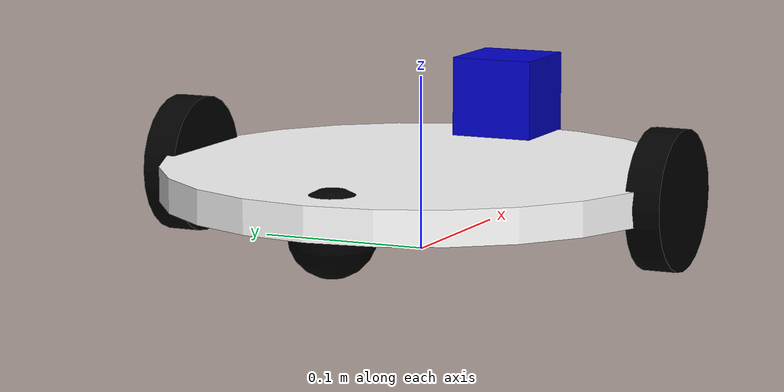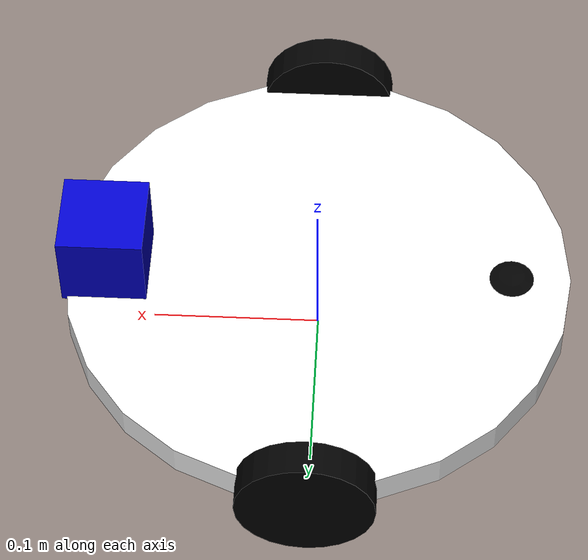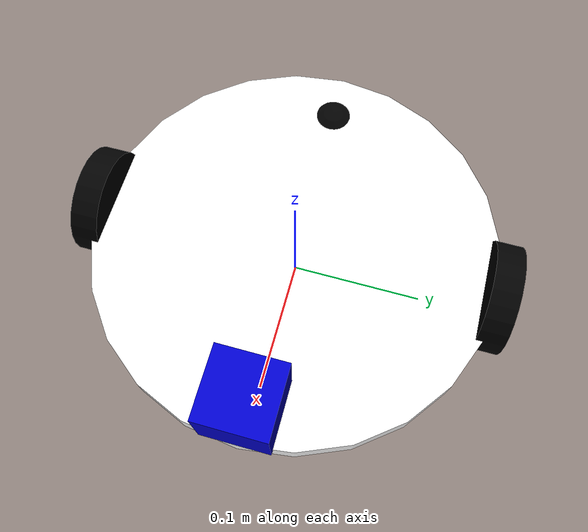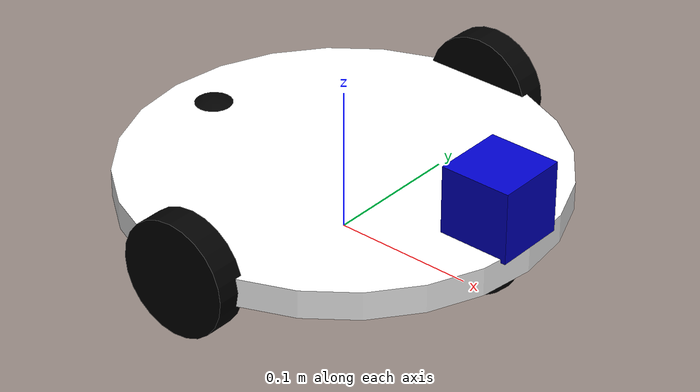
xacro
<?xml version="1.0" ?>
<!-- |    This document was autogenerated by xacro from diff_wheeled_robot.xacro       | -->
<!-- |    EDITING THIS FILE BY HAND IS NOT RECOMMENDED                                 | -->
<robot name="differential_wheeled_robot" xmlns:xacro="http://www.ros.org/wiki/xacro">
  <!-- Wheels -->
  <!-- in kg-->
  <!-- Defining the colors used in this robot -->
  <material name="Black">
    <color rgba="0.0 0.0 0.0 1.0"/>
  </material>
  <material name="Red">
    <color rgba="0.8 0.0 0.0 1.0"/>
  </material>
  <material name="White">
    <color rgba="1.0 1.0 1.0 1.0"/>
  </material>
  <material name="Blue">
    <color rgba="0.0 0.0 0.8 1.0"/>
  </material>
  <!-- PROPERTY LIST -->
  <!--All units in m-kg-s-radians unit system -->
  <!-- Main body radius and height -->
  <!-- Main Body Cylinder base   -->
  <!-- in kg-->
  <!-- caster wheel radius and height -->
  <!-- caster wheel mass -->
  <!-- in kg-->
  <!-- caster wheel radius and height -->
  <!-- caster wheel mass -->
  <!-- in kg-->
  <!-- Wheels -->
   --&gt;
  <!-- in kg-->
  <!-- Hokuyo Laser scanner -->
  <!-- Macro for calculating inertia of cylinder -->
  <!-- BASE-FOOTPRINT -->
  <!-- base_footprint is a fictitious link(frame) that is on the ground right below base_link origin -->
  <link name="base_footprint"/>

  <joint name="base_footprint_joint" type="fixed">
    <origin rpy="0 0 0" xyz="0 0 0.04"/>
    <parent link="base_footprint"/>
    <child link="base_link"/>
  </joint>
  <!-- BASE-LINK -->
  <!--Actual body/chassis of the robot-->
  <link name="base_link">
    <inertial>
      <mass value="5"/>
      <origin xyz="0 0 0"/>
      <!--The 3x3 rotational inertia matrix. -->
      <inertia ixx="0.0282916666667" ixy="0" ixz="0" iyy="0.0282916666667" iyz="0" izz="0.05625"/>
    </inertial>
    <visual>
      <origin rpy="0 0 0" xyz="0 0 0"/>
      <geometry>
        <cylinder length="0.02" radius="0.15"/>
      </geometry>
      <material name="White"/>
    </visual>
    <collision>
      <origin rpy="0 0 0 " xyz="0 0 0"/>
      <geometry>
        <cylinder length="0.02" radius="0.15"/>
      </geometry>
    </collision>
  </link>
  <gazebo reference="base_link">
    <material>Gazebo/White</material>
    <turnGravityOff>false</turnGravityOff>
  </gazebo>
  <!--fb : front, back ; lr: left, right -->
  <link name="front_right_wheel">
    <visual>
      <origin rpy="1.57079632679 0  0 " xyz="0 0 0"/>
      <geometry>
        <cylinder length="0.02" radius="0.04"/>
      </geometry>
      <material name="Black"/>
    </visual>
    <collision>
      <origin rpy="1.57079632679 0 0 " xyz="0 0 0"/>
      <geometry>
        <cylinder length="0.02" radius="0.04"/>
      </geometry>
    </collision>
    <inertial>
      <mass value="2.5"/>
      <origin xyz="0 0 0"/>
      <inertia ixx="0.00108333333333" ixy="0" ixz="0" iyy="0.00108333333333" iyz="0" izz="0.002"/>
    </inertial>
  </link>
  <gazebo reference="front_right_wheel">
    <mu1 value="1.0"/>
    <mu2 value="1.0"/>
    <kp value="10000000.0"/>
    <kd value="1.0"/>
    <fdir1 value="1 0 0"/>
    <material>Gazebo/Grey</material>
    <turnGravityOff>false</turnGravityOff>
  </gazebo>
  <joint name="front_right_wheel_joint" type="continuous">
    <parent link="base_link"/>
    <child link="front_right_wheel"/>
    <origin rpy="0 0 0" xyz="0.0 0.15 0.0"/>
    <axis rpy="0  0" xyz="0 1 0"/>
    <limit effort="100" velocity="100"/>
    <joint_properties damping="0.0" friction="0.0"/>
  </joint>
  <!-- Transmission is important to link the joints and the controller -->
  <transmission name="front_right_wheel_joint_trans">
    <type>transmission_interface/SimpleTransmission</type>
    <joint name="front_right_wheel_joint"/>
    <actuator name="front_right_wheel_joint_motor">
      <hardwareInterface>EffortJointInterface</hardwareInterface>
      <mechanicalReduction>1</mechanicalReduction>
    </actuator>
  </transmission>
  <!--fb : front, back ; lr: left, right -->
  <link name="front_left_wheel">
    <visual>
      <origin rpy="1.57079632679 0  0 " xyz="0 0 0"/>
      <geometry>
        <cylinder length="0.02" radius="0.04"/>
      </geometry>
      <material name="Black"/>
    </visual>
    <collision>
      <origin rpy="1.57079632679 0 0 " xyz="0 0 0"/>
      <geometry>
        <cylinder length="0.02" radius="0.04"/>
      </geometry>
    </collision>
    <inertial>
      <mass value="2.5"/>
      <origin xyz="0 0 0"/>
      <inertia ixx="0.00108333333333" ixy="0" ixz="0" iyy="0.00108333333333" iyz="0" izz="0.002"/>
    </inertial>
  </link>
  <gazebo reference="front_left_wheel">
    <mu1 value="1.0"/>
    <mu2 value="1.0"/>
    <kp value="10000000.0"/>
    <kd value="1.0"/>
    <fdir1 value="1 0 0"/>
    <material>Gazebo/Grey</material>
    <turnGravityOff>false</turnGravityOff>
  </gazebo>
  <joint name="front_left_wheel_joint" type="continuous">
    <parent link="base_link"/>
    <child link="front_left_wheel"/>
    <origin rpy="0 0 0" xyz="0.0 -0.15 0.0"/>
    <axis rpy="0  0" xyz="0 1 0"/>
    <limit effort="100" velocity="100"/>
    <joint_properties damping="0.0" friction="0.0"/>
  </joint>
  <!-- Transmission is important to link the joints and the controller -->
  <transmission name="front_left_wheel_joint_trans">
    <type>transmission_interface/SimpleTransmission</type>
    <joint name="front_left_wheel_joint"/>
    <actuator name="front_left_wheel_joint_motor">
      <hardwareInterface>EffortJointInterface</hardwareInterface>
      <mechanicalReduction>1</mechanicalReduction>
    </actuator>
  </transmission>
  <!--Caster front  -->
  <link name="caster_front_link">
    <visual>
      <origin rpy="1.57079632679 0 0" xyz="0 0.02 0"/>
      <geometry>
        <sphere radius="0.025"/>
      </geometry>
      <material name="Black"/>
    </visual>
    <collision>
      <geometry>
        <sphere radius="0.025"/>
      </geometry>
      <origin rpy="1.57079632679 0 0" xyz="0 0.02 0"/>
    </collision>
    <inertial>
      <mass value="0.5"/>
      <origin xyz="0 0 0"/>
      <inertia ixx="0.001" ixy="0.0" ixz="0.0" iyy="0.001" iyz="0.0" izz="0.001"/>
    </inertial>
  </link>
  <joint name="caster_front_joint" type="fixed">
    <parent link="base_link"/>
    <child link="caster_front_link"/>
    <origin rpy="-1.57079632679 0 0" xyz="0.115 0.0 0.007"/>
  </joint>
  <gazebo reference="caster_front_link">
    <turnGravityOff>false</turnGravityOff>
  </gazebo>
  <!--Caster back  -->
  <link name="caster_back_link">
    <visual>
      <origin rpy="1.57079632679 0 0" xyz="0.02 0.02 0 "/>
      <geometry>
        <sphere radius="0.025"/>
      </geometry>
      <material name="Black"/>
    </visual>
    <collision>
      <geometry>
        <sphere radius="0.025"/>
      </geometry>
      <origin rpy="1.57079632679 0 0" xyz="0 0.02 0 "/>
    </collision>
    <inertial>
      <mass value="0.5"/>
      <origin xyz="0 0 0"/>
      <inertia ixx="0.001" ixy="0.0" ixz="0.0" iyy="0.001" iyz="0.0" izz="0.001"/>
    </inertial>
  </link>
  <joint name="caster_back_joint" type="fixed">
    <parent link="base_link"/>
    <child link="caster_back_link"/>
    <origin rpy="-1.57079632679 0 0" xyz="-0.135 0.0 0.009"/>
  </joint>
  <gazebo reference="caster_back_link">
    <turnGravityOff>false</turnGravityOff>
  </gazebo>
  <!-- SENSORS -->
  <!-- hokuyo -->
  <link name="hokuyo_link">
    <visual>
      <origin rpy="0 0 0" xyz="0 0 0"/>
      <geometry>
        <box size="0.05 0.05 0.05"/>
      </geometry>
      <material name="Blue"/>
    </visual>
  </link>
  <joint name="hokuyo_joint" type="fixed">
    <origin rpy="0 0 0" xyz="0.125 0 0.0325"/>
    <parent link="base_link"/>
    <child link="hokuyo_link"/>
  </joint>
  <gazebo reference="hokuyo_link">
    <material>Gazebo/Blue</material>
    <turnGravityOff>false</turnGravityOff>
    <sensor name="head_hokuyo_sensor" type="ray">
      <pose>0.025 0 0 0 0 0</pose>
      <visualize>false</visualize>
      <update_rate>40</update_rate>
      <ray>
        <scan>
          <horizontal>
            <samples>720</samples>
            <resolution>1</resolution>
            <min_angle>-1.570796</min_angle>
            <max_angle>1.570796</max_angle>
          </horizontal>
        </scan>
        <range>
          <min>0.10</min>
          <max>10.0</max>
          <resolution>0.001</resolution>
        </range>
      </ray>
      <plugin filename="libgazebo_ros_laser.so" name="gazebo_ros_head_hokuyo_controller">
        <topicName>/scan</topicName>
        <frameName>hokuyo_link</frameName>
      </plugin>
    </sensor>
  </gazebo>
  <!-- Differential drive controller  -->
  <gazebo>
    <plugin filename="libgazebo_ros_diff_drive.so" name="differential_drive_controller_front">
      <commandTopic>cmd_vel</commandTopic>
      <odometryTopic>odom</odometryTopic>
      <odometryFrame>odom</odometryFrame>
      <odometrySource>world</odometrySource>
      <publishOdomTF>true</publishOdomTF>
      <robotBaseFrame>base_footprint</robotBaseFrame>
      <publishWheelTF>false</publishWheelTF>
      <publishTf>true</publishTf>
      <publishWheelJointState>true</publishWheelJointState>
      <legacyMode>false</legacyMode>
      <updateRate>100</updateRate>
      <leftJoint>front_left_wheel_joint</leftJoint>
      <rightJoint>front_right_wheel_joint</rightJoint>
      <wheelSeparation>0.3</wheelSeparation>
      <wheelDiameter>0.08</wheelDiameter>
      <wheelAcceleration>1.5</wheelAcceleration>
      <wheelTorque>25</wheelTorque>
      <rosDebugLevel>na</rosDebugLevel>
    </plugin>
  </gazebo>

<gazebo>
    <plugin name="gazebo_ros_control" filename="libgazebo_ros_control.so" />
    <plugin filename="libgazebo_ros_joint_state_publisher.so" name="joint_state_publisher">
      <jointName>front_right_wheel_joint, front_left_wheel_joint</jointName>
      <updateRate>10.0</updateRate>
      <alwaysOn>true</alwaysOn>
    </plugin>
</gazebo>

</robot>
